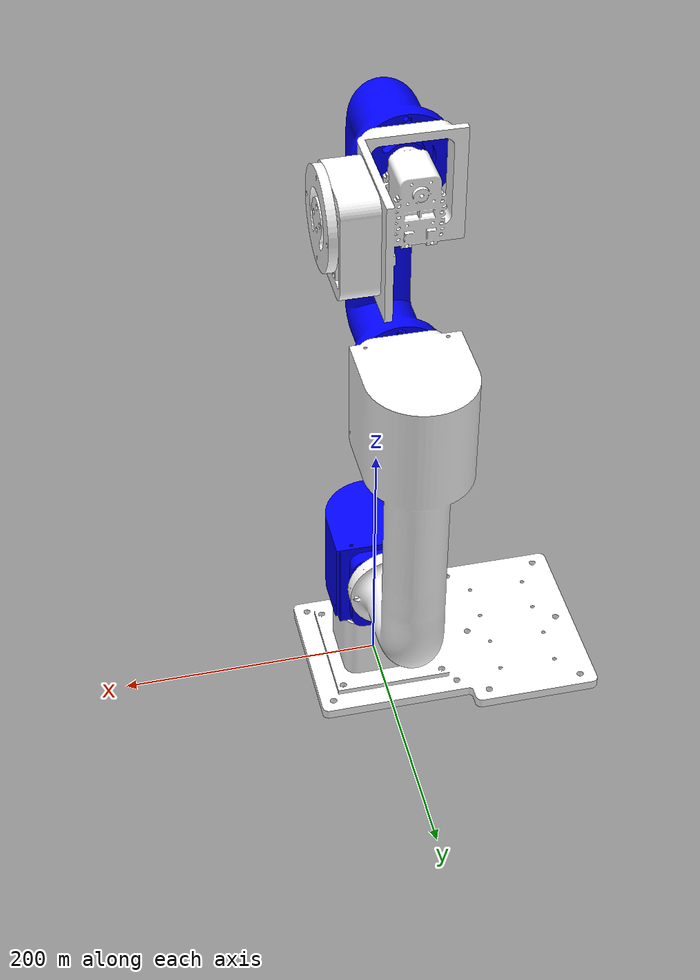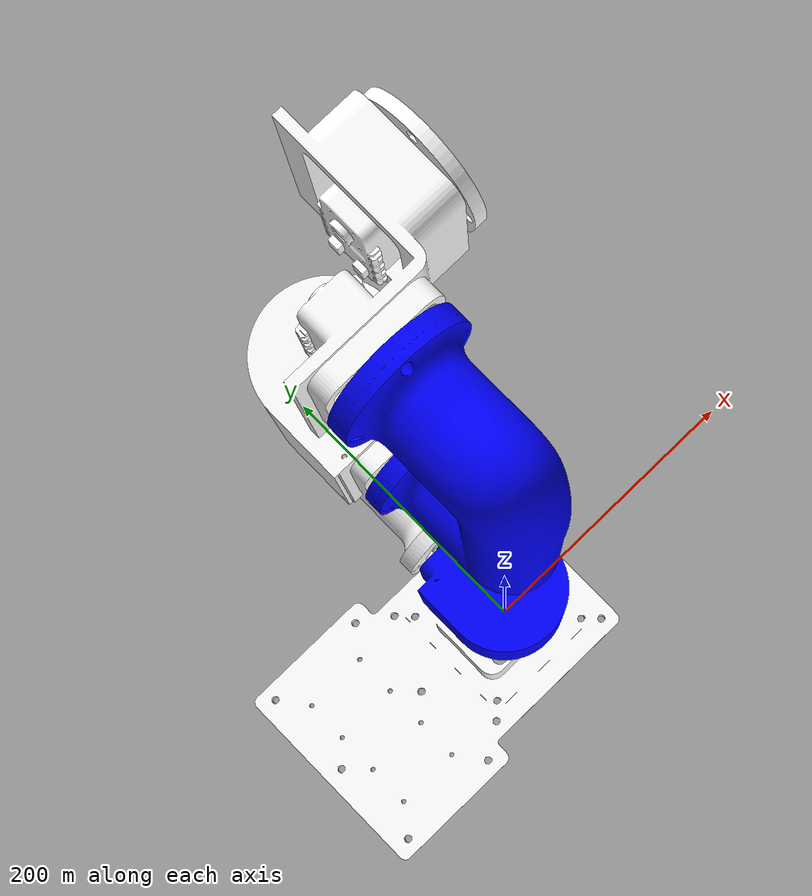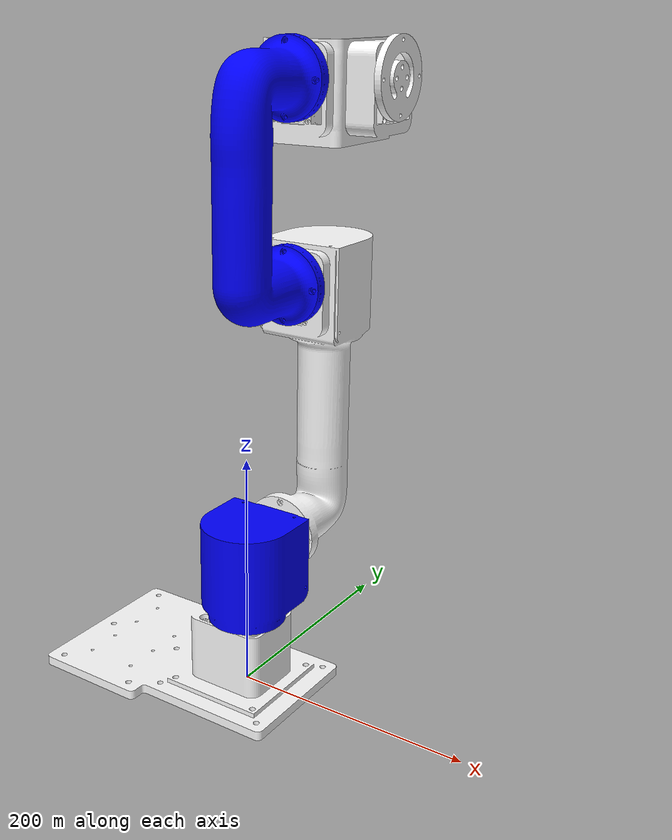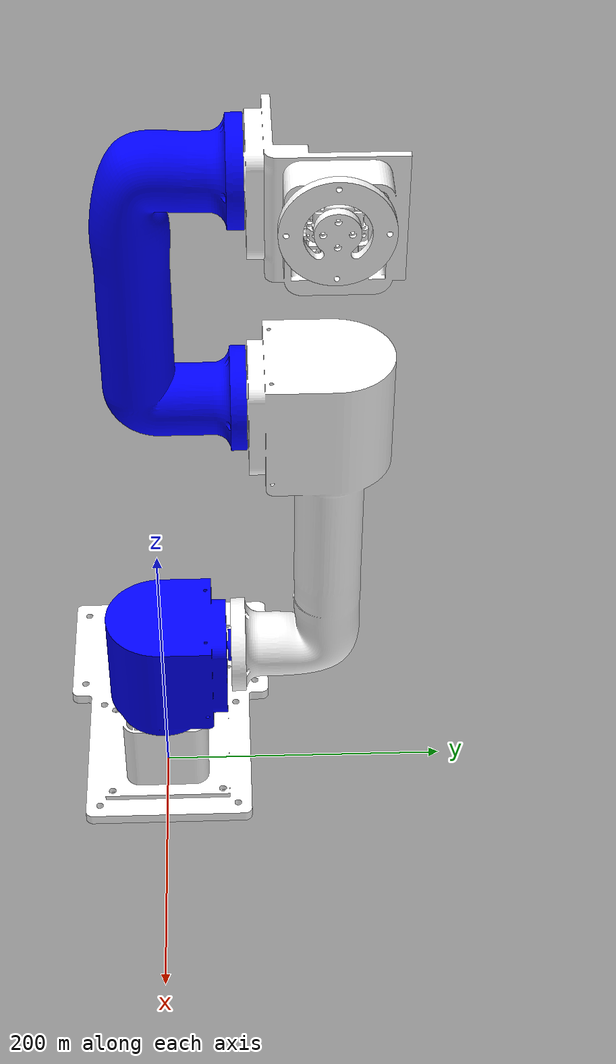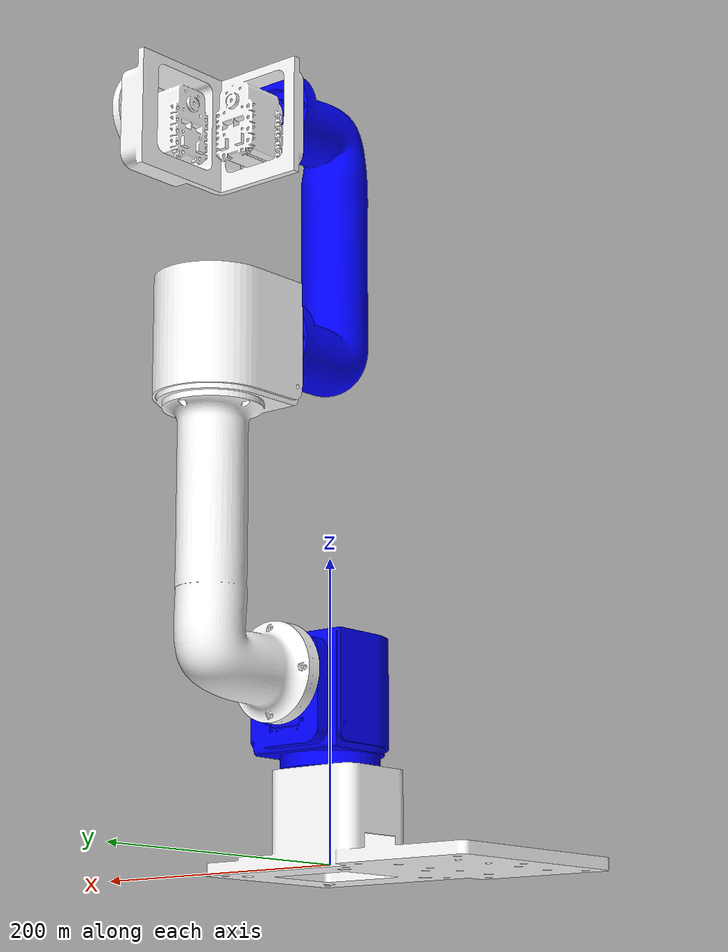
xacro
<?xml version="1.0" ?>
<robot xmlns:sensor="http://playerstage.sourceforge.net/gazebo/xmlschema/#sensor"
       xmlns:controller="http://playerstage.sourceforge.net/gazebo/xmlschema/#controller"
       xmlns:interface="http://playerstage.sourceforge.net/gazebo/xmlschema/#interface"
       xmlns:xacro="http://playerstage.sourceforge.net/gazebo/xmlschema/#xacro"
       name="robotic_arm" >

  <xacro:include filename="$(find robotic_arm)/urdf/robot_macro.xacro"/>

    <!-- Used for fixing robot to Gazebo / Can be used to attach the arm in another robot-->
    <link name="world"/>

    <!-- arm -->
    <xacro:robotic_arm parent="world">
        <origin xyz="0 0 0.001" rpy="0 0 0" /> <!--slightly above gazebo plane-->.
    </xacro:robotic_arm>

</robot>

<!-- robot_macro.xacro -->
<robot xmlns:xacro="http://wiki.ros.org/xacro"  name="robotic_arm">

    <!-- *                                          Macros                                                       -->
    <xacro:macro name="robotic_arm" params="parent *origin">
    <xacro:macro name="transmission_block" params="joint_name">
      <transmission name="tran1">
        <type>transmission_interface/SimpleTransmission</type>
        <joint name="${joint_name}">
          <hardwareInterface>hardware_interface/PositionJointInterface</hardwareInterface>
        </joint>
        <actuator name="${joint_name}_motor">
          <hardwareInterface>hardware_interface/EffortJointInterface</hardwareInterface>
          <mechanicalReduction>1</mechanicalReduction>
        </actuator>
      </transmission>
    </xacro:macro>

    <!-- *                                          Links                                                           -->
    <!-- Base link #1 -->
    <link name="base_link">
      <visual>
        <origin xyz="0 0 0" rpy="0 0 0" />
        <geometry>
          <mesh filename="package://robotic_arm/meshes/base_link.STL" scale="1 1 1" />
        </geometry>
        <material name="white">
        <color rgba="1 1 1 1"/>
      </material>
      </visual>
      <collision>
        <origin xyz="0 0 0" rpy="0 0 0 " />
        <geometry>
          <mesh filename="package://robotic_arm/meshes/base_link.STL" scale="0.1 0.1 0.1" />
        </geometry>
      </collision>
      <inertial>
        <origin xyz="0 0 0" rpy="0 0 0" />
        <mass value="1" />
        <inertia ixx="1.0" ixy="0.0" ixz="0.0" iyy="1.0" iyz="0.0" izz="1.0"/>
      </inertial>
    </link>
    <gazebo reference="base_link">
        <material>Gazebo/White</material>
        <gravity>1</gravity>
        <selfCollide>0</selfCollide>
        <kinematic>1</kinematic>
    </gazebo>

    <!-- Torso link #2 -->
    <link name="torso_link">
      <visual>
        <origin xyz="0 0 0" rpy="0 0 0" />
        <geometry>
          <mesh filename="package://robotic_arm/meshes/torso_link.STL" scale="1.0 1.0 1.0" />
        </geometry>
        <material name="blue">
        <color rgba="0 0 1 1"/>
      </material>
      </visual>
      <collision>
        <origin xyz="0 0 0" rpy="0 0 0" />
        <geometry>
          <mesh filename="package://robotic_arm/meshes/torso_link.STL" scale="0.1 0.1 0.1" />
        </geometry>
      </collision>
      <inertial>
        <origin rpy="0 0 0" xyz="0 0 0"/>
        <mass value="0.550" />
        <inertia ixx="1.0" ixy="0.0" ixz="0.0" iyy="1.0" iyz="0.0" izz="1.0"/>
      </inertial>
    </link>
    <gazebo reference="torso_link">
        <material>Gazebo/Blue</material>
        <gravity>1</gravity>
        <selfCollide>0</selfCollide>
        <kinematic>1</kinematic>
    </gazebo>

  <!-- Forearm link #3 -->
    <link name="forearm_link">

    <visual>
      <geometry>
	    <mesh filename="package://robotic_arm/meshes/forearm_link.STL" scale="1 1 1" />
      </geometry>
      <origin rpy="0 0 0" xyz="0 0 0"/>
      <material name="white">
        <color rgba="1 1 1 1"/>
      </material>
    </visual>

    <collision>
    <geometry>
	    <mesh filename="package://robotic_arm/meshes/forearm_link.STL" scale="0.1 0.1 0.1" />
      </geometry>
      <origin rpy="0 0 0" xyz="0 0 0"/>
    </collision>

    <inertial>
	<mass value="1"/>
	<inertia ixx="1.0" ixy="0.0" ixz="0.0" iyy="1.0" iyz="0.0" izz="1.0"/>
    </inertial>

  </link>

  <!-- Arm link #4 -->
    <link name="arm_link">

    <visual>
      <geometry>
	    <mesh filename="package://robotic_arm/meshes/arm_link.STL" scale="1 1 1" />
      </geometry>
      <origin rpy="0 0 0" xyz="0 0 0"/>
      <material name="blue">
        <color rgba="0 0 1 1"/>
      </material>
    </visual>

    <collision>
    <geometry>
	    <mesh filename="package://robotic_arm/meshes/arm_link.STL" scale="0.1 0.1 0.1" />
      </geometry>
      <origin rpy="0 0 0" xyz="0 0 0"/>
    </collision>

    <inertial>
	<mass value="1"/>
	<inertia ixx="1.0" ixy="0.0" ixz="0.0" iyy="1.0" iyz="0.0" izz="1.0"/>
    </inertial>

  </link>

  <!-- Wrist link #5 -->
    <link name="wrist_link">

    <visual>
      <geometry>
	    <mesh filename="package://robotic_arm/meshes/wrist_link.STL" scale="1 1 1" />
      </geometry>
      <origin rpy="0 0 0" xyz="0 0 0"/>
      <material name="white">
        <color rgba="1 1 1 1"/>
      </material>
    </visual>

    <collision>
    <geometry>
	    <mesh filename="package://robotic_arm/meshes/wrist_link.STL" scale="0.1 0.1 0.1" />
      </geometry>
      <origin rpy="0 0 0" xyz="0 0 0"/>
    </collision>

    <inertial>
	<mass value="1"/>
	<inertia ixx="1.0" ixy="0.0" ixz="0.0" iyy="1.0" iyz="0.0" izz="1.0"/>
    </inertial>

  </link>

  <!-- Gripper link #^ -->
    <link name="gripper_link">

    <visual>
      <geometry>
	    <mesh filename="package://robotic_arm/meshes/gripper_link.STL" scale="1 1 1" />
      </geometry>
      <origin rpy="0 0 0" xyz="0 0 0"/>
      <material name="white">
        <color rgba="1 1 1 1"/>
      </material>
    </visual>

    <collision>
    <geometry>
	    <mesh filename="package://robotic_arm/meshes/gripper_link.STL" scale="0.1 0.1 0.1" />
      </geometry>
      <origin rpy="0 0 0" xyz="0 0 0"/>
    </collision>

    <inertial>
	<mass value="1"/>
	<inertia ixx="1.0" ixy="0.0" ixz="0.0" iyy="1.0" iyz="0.0" izz="1.0"/>
    </inertial>

  </link>

    <!-- ****** JOINT DEFINITIONS ****** -->

    <joint name="base_fixed_joint" type="fixed">
      <xacro:insert_block name="origin" />
      <parent link="${parent}" />
      <child link="base_link" />
    </joint>

    <joint name="base_torso_joint" type="revolute">
      <origin xyz="0 0 60.53" rpy="0 0 0" />
      <parent link="base_link" />
      <child link="torso_link" />
      <axis xyz="0 0 1" />
      <limit effort="300" velocity="0.1" lower="-3.14" upper="3.14"/>
      <dynamics damping="50" friction="1" />
    </joint>
    <gazebo reference="base_torso_joint">
      <provideFeedback>0</provideFeedback>
    </gazebo>

    <joint name="torso_forearm_joint" type="revolute">
      <origin xyz="0 48.22 56.5" rpy="0 0 0" />
      <parent link="torso_link" />
      <child link="forearm_link" />
      <axis xyz="0 1 0" />
      <limit effort="300" velocity="0.1" lower="-3.14" upper="3.14"/>
      <dynamics damping="50" friction="1" />
    </joint>
    <gazebo reference="torso_forearm_joint">
      <provideFeedback>0</provideFeedback>
    </gazebo>

    <joint name="forearm_arm_joint" type="revolute">
      <origin xyz="0 13.0 215.75" rpy="0 0 0" />
      <parent link="forearm_link" />
      <child link="arm_link" />
      <axis xyz="0 1 0" />
      <limit effort="300" velocity="0.1" lower="-3.14" upper="3.14"/>
      <dynamics damping="50" friction="1" />
    </joint>
    <gazebo reference="forearm_arm_joint">
      <provideFeedback>0</provideFeedback>
    </gazebo>

    <joint name="arm_wrist_joint" type="revolute">
      <origin xyz="0 4.5 160" rpy="0 0 0" />
      <parent link="arm_link" />
      <child link="wrist_link" />
      <axis xyz="0 1 0" />
      <limit effort="300" velocity="0.1" lower="-3.14" upper="3.14"/>
      <dynamics damping="50" friction="1" />
    </joint>
    <gazebo reference="arm_wrist_joint">
      <provideFeedback>0</provideFeedback>
    </gazebo>

    <joint name="wrist_gripper_joint" type="revolute">
      <origin xyz="61 45.25 0" rpy="0 0 0" />
      <parent link="wrist_link" />
      <child link="gripper_link" />
      <axis xyz="1 0 0" />
      <limit effort="300" velocity="0.1" lower="-3.14" upper="3.14"/>
      <dynamics damping="50" friction="1" />
    </joint>
    <gazebo reference="wrist_gripper_joint">
      <provideFeedback>0</provideFeedback>
    </gazebo>

    <!-- ****** TRANSMISSION BLOCKS ****** -->
    <xacro:transmission_block joint_name="base_fixed_joint" />
    <xacro:transmission_block joint_name="base_torso_joint" />
    <xacro:transmission_block joint_name="torso_forearm_joint" />
    <xacro:transmission_block joint_name="forearm_arm_joint" />
    <xacro:transmission_block joint_name="arm_wrist_joint" />
    <xacro:transmission_block joint_name="wrist_gripper_joint" />

    <!-- ros_control plugin -->
    <gazebo>
      <plugin name="gazebo_ros_control" filename="libgazebo_ros_control.so">
        <robotNamespace>/robotic_arm</robotNamespace>
        <robotSimType>gazebo_ros_control/DefaultRobotHWSim</robotSimType>
        <legacyModeNS>true</legacyModeNS>
      </plugin>
    </gazebo>
    </xacro:macro>
</robot>
